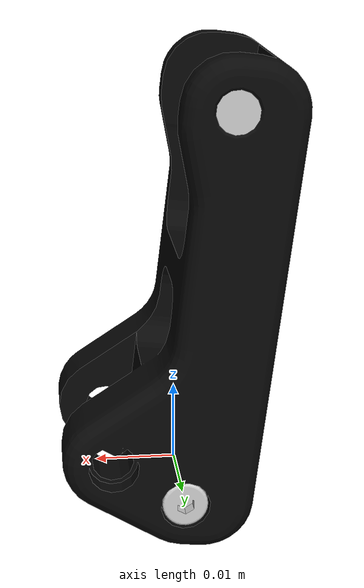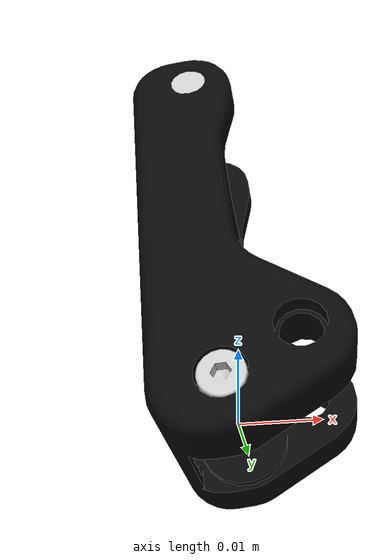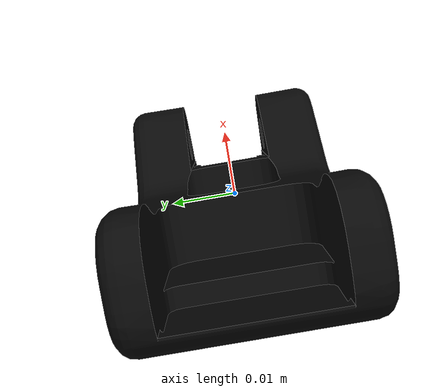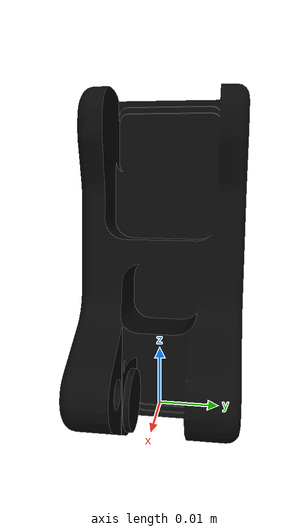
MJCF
<mujoco model="right_finger">
  <default>
    <default class="visual">
      <geom group="2" type="mesh" contype="0" conaffinity="0"/>
    </default>
    <default class="collision">
      <geom group="3" type="mesh"/>
    </default>
  </default>
  <asset>
    <material name="material_m36_0" specular="0.20000000000000004" shininess="1.0" rgba="0.80000000 0.80000000 0.80000000 1.0"/>
    <material name="material_m36_1" specular="0.20000000000000004" shininess="1.0" rgba="0.03137255 0.03137255 0.03137255 1.0"/>
    <mesh file="right_finger_0.obj"/>
    <mesh file="right_finger_1.obj"/>
  </asset>
  <worldbody>
    <body name="right_finger">
      <geom mesh="right_finger_0" material="material_m36_1" class="visual"/>
      <geom mesh="right_finger_1" material="material_m36_0" class="visual"/>
      <geom mesh="right_finger_0" class="collision"/>
      <geom mesh="right_finger_1" class="collision"/>
    </body>
  </worldbody>
</mujoco>
